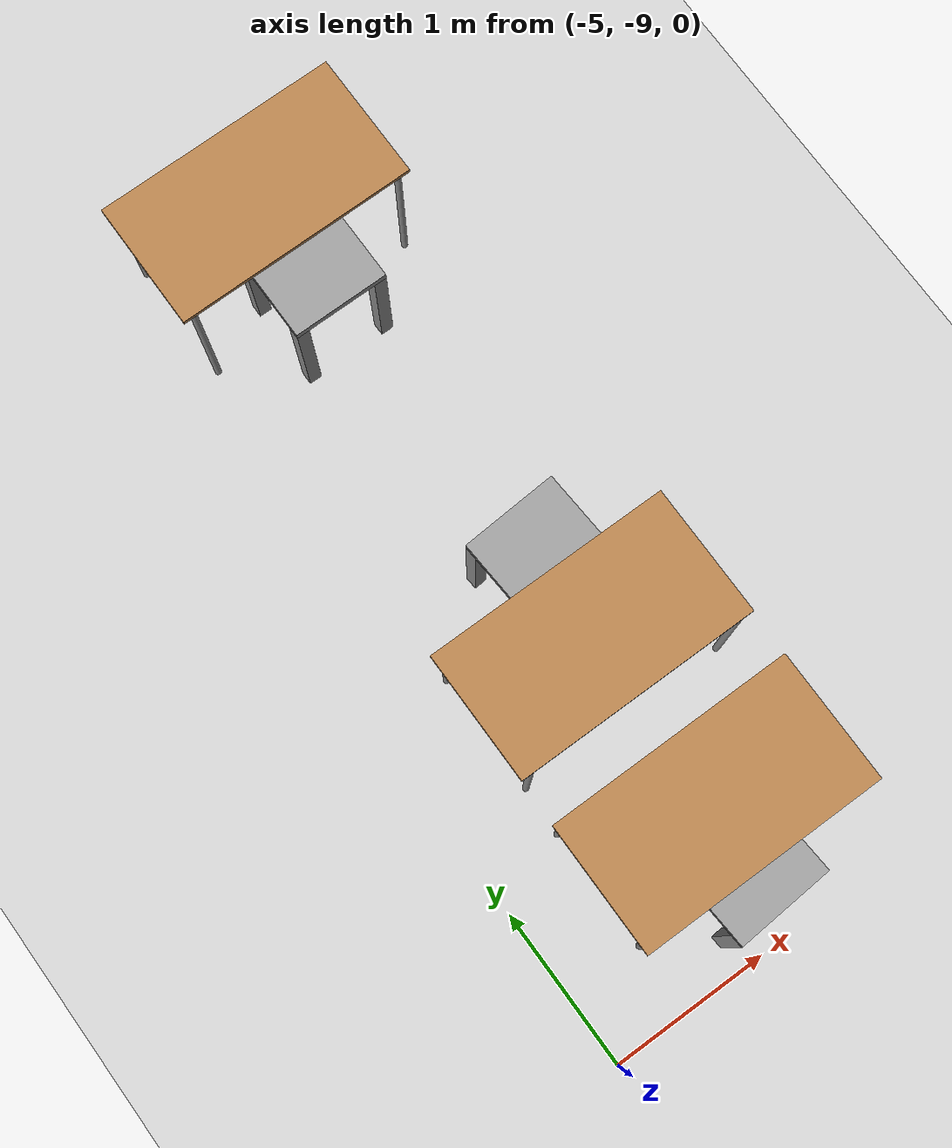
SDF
<sdf version="1.7">
 <world name="default">
  <model name="ground_plane">
   <static>1</static>
   <link name="link">
    <collision name="collision">
     <geometry><plane><normal>0 0 1</normal><size>100 100</size></plane></geometry>
     <surface>
      <contact><collide_bitmask>65535</collide_bitmask></contact>
      <friction><ode><mu>100</mu><mu2>50</mu2></ode></friction>
     </surface>
    </collision>
    <visual name="visual">
     <cast_shadows>0</cast_shadows>
     <geometry><plane><normal>0 0 1</normal><size>100 100</size></plane></geometry>
     <material>
      <script><uri>file://media/materials/scripts/gazebo.material</uri><name>Gazebo/Grey</name></script>
     </material>
    </visual>
   </link>
  </model>
  <model name="table">
   <static>1</static>
   <link name="link">
    <collision name="surface">
     <pose>0 0 1 0 -0 0</pose>
     <geometry><box><size>1.5 0.8 0.03</size></box></geometry>
     <surface><friction><ode><mu>0.6</mu><mu2>0.6</mu2></ode></friction></surface>
    </collision>
    <visual name="visual1">
     <pose>0 0 1 0 -0 0</pose>
     <geometry><box><size>1.5 0.8 0.03</size></box></geometry>
     <material>
      <script><uri>file://media/materials/scripts/gazebo.material</uri><name>Gazebo/Wood</name></script>
     </material>
    </visual>
    <collision name="front_left_leg">
     <pose>0.68 0.38 0.5 0 -0 0</pose>
     <geometry><cylinder><radius>0.02</radius><length>1</length></cylinder></geometry>
    </collision>
    <visual name="front_left_leg">
     <pose>0.68 0.38 0.5 0 -0 0</pose>
     <geometry><cylinder><radius>0.02</radius><length>1</length></cylinder></geometry>
     <material>
      <script><uri>file://media/materials/scripts/gazebo.material</uri><name>Gazebo/Grey</name></script>
     </material>
    </visual>
    <collision name="front_right_leg">
     <pose>0.68 -0.38 0.5 0 -0 0</pose>
     <geometry><cylinder><radius>0.02</radius><length>1</length></cylinder></geometry>
    </collision>
    <visual name="front_right_leg">
     <pose>0.68 -0.38 0.5 0 -0 0</pose>
     <geometry><cylinder><radius>0.02</radius><length>1</length></cylinder></geometry>
     <material>
      <script><uri>file://media/materials/scripts/gazebo.material</uri><name>Gazebo/Grey</name></script>
     </material>
    </visual>
    <collision name="back_right_leg">
     <pose>-0.68 -0.38 0.5 0 -0 0</pose>
     <geometry><cylinder><radius>0.02</radius><length>1</length></cylinder></geometry>
    </collision>
    <visual name="back_right_leg">
     <pose>-0.68 -0.38 0.5 0 -0 0</pose>
     <geometry><cylinder><radius>0.02</radius><length>1</length></cylinder></geometry>
     <material>
      <script><uri>file://media/materials/scripts/gazebo.material</uri><name>Gazebo/Grey</name></script>
     </material>
    </visual>
    <collision name="back_left_leg">
     <pose>-0.68 0.38 0.5 0 -0 0</pose>
     <geometry><cylinder><radius>0.02</radius><length>1</length></cylinder></geometry>
    </collision>
    <visual name="back_left_leg">
     <pose>-0.68 0.38 0.5 0 -0 0</pose>
     <geometry><cylinder><radius>0.02</radius><length>1</length></cylinder></geometry>
     <material>
      <script><uri>file://media/materials/scripts/gazebo.material</uri><name>Gazebo/Grey</name></script>
     </material>
    </visual>
   </link>
   <pose>-3.83942 -4.04953 0 0 -0 0</pose>
  </model>
  <model name="table_0">
   <static>1</static>
   <link name="link">
    <collision name="surface">
     <pose>0 0 1 0 -0 0</pose>
     <geometry><box><size>1.5 0.8 0.03</size></box></geometry>
     <surface><friction><ode><mu>0.6</mu><mu2>0.6</mu2></ode></friction></surface>
    </collision>
    <visual name="visual1">
     <pose>0 0 1 0 -0 0</pose>
     <geometry><box><size>1.5 0.8 0.03</size></box></geometry>
     <material>
      <script><uri>file://media/materials/scripts/gazebo.material</uri><name>Gazebo/Wood</name></script>
     </material>
    </visual>
    <collision name="front_left_leg">
     <pose>0.68 0.38 0.5 0 -0 0</pose>
     <geometry><cylinder><radius>0.02</radius><length>1</length></cylinder></geometry>
    </collision>
    <visual name="front_left_leg">
     <pose>0.68 0.38 0.5 0 -0 0</pose>
     <geometry><cylinder><radius>0.02</radius><length>1</length></cylinder></geometry>
     <material>
      <script><uri>file://media/materials/scripts/gazebo.material</uri><name>Gazebo/Grey</name></script>
     </material>
    </visual>
    <collision name="front_right_leg">
     <pose>0.68 -0.38 0.5 0 -0 0</pose>
     <geometry><cylinder><radius>0.02</radius><length>1</length></cylinder></geometry>
    </collision>
    <visual name="front_right_leg">
     <pose>0.68 -0.38 0.5 0 -0 0</pose>
     <geometry><cylinder><radius>0.02</radius><length>1</length></cylinder></geometry>
     <material>
      <script><uri>file://media/materials/scripts/gazebo.material</uri><name>Gazebo/Grey</name></script>
     </material>
    </visual>
    <collision name="back_right_leg">
     <pose>-0.68 -0.38 0.5 0 -0 0</pose>
     <geometry><cylinder><radius>0.02</radius><length>1</length></cylinder></geometry>
    </collision>
    <visual name="back_right_leg">
     <pose>-0.68 -0.38 0.5 0 -0 0</pose>
     <geometry><cylinder><radius>0.02</radius><length>1</length></cylinder></geometry>
     <material>
      <script><uri>file://media/materials/scripts/gazebo.material</uri><name>Gazebo/Grey</name></script>
     </material>
    </visual>
    <collision name="back_left_leg">
     <pose>-0.68 0.38 0.5 0 -0 0</pose>
     <geometry><cylinder><radius>0.02</radius><length>1</length></cylinder></geometry>
    </collision>
    <visual name="back_left_leg">
     <pose>-0.68 0.38 0.5 0 -0 0</pose>
     <geometry><cylinder><radius>0.02</radius><length>1</length></cylinder></geometry>
     <material>
      <script><uri>file://media/materials/scripts/gazebo.material</uri><name>Gazebo/Grey</name></script>
     </material>
    </visual>
   </link>
   <pose>-3.83019 -7.10717 0 0 -0 0</pose>
  </model>
  <model name="table_1">
   <static>1</static>
   <link name="link">
    <collision name="surface">
     <pose>0 0 1 0 -0 0</pose>
     <geometry><box><size>1.5 0.8 0.03</size></box></geometry>
     <surface><friction><ode><mu>0.6</mu><mu2>0.6</mu2></ode></friction></surface>
    </collision>
    <visual name="visual1">
     <pose>0 0 1 0 -0 0</pose>
     <geometry><box><size>1.5 0.8 0.03</size></box></geometry>
     <material>
      <script><uri>file://media/materials/scripts/gazebo.material</uri><name>Gazebo/Wood</name></script>
     </material>
    </visual>
    <collision name="front_left_leg">
     <pose>0.68 0.38 0.5 0 -0 0</pose>
     <geometry><cylinder><radius>0.02</radius><length>1</length></cylinder></geometry>
    </collision>
    <visual name="front_left_leg">
     <pose>0.68 0.38 0.5 0 -0 0</pose>
     <geometry><cylinder><radius>0.02</radius><length>1</length></cylinder></geometry>
     <material>
      <script><uri>file://media/materials/scripts/gazebo.material</uri><name>Gazebo/Grey</name></script>
     </material>
    </visual>
    <collision name="front_right_leg">
     <pose>0.68 -0.38 0.5 0 -0 0</pose>
     <geometry><cylinder><radius>0.02</radius><length>1</length></cylinder></geometry>
    </collision>
    <visual name="front_right_leg">
     <pose>0.68 -0.38 0.5 0 -0 0</pose>
     <geometry><cylinder><radius>0.02</radius><length>1</length></cylinder></geometry>
     <material>
      <script><uri>file://media/materials/scripts/gazebo.material</uri><name>Gazebo/Grey</name></script>
     </material>
    </visual>
    <collision name="back_right_leg">
     <pose>-0.68 -0.38 0.5 0 -0 0</pose>
     <geometry><cylinder><radius>0.02</radius><length>1</length></cylinder></geometry>
    </collision>
    <visual name="back_right_leg">
     <pose>-0.68 -0.38 0.5 0 -0 0</pose>
     <geometry><cylinder><radius>0.02</radius><length>1</length></cylinder></geometry>
     <material>
      <script><uri>file://media/materials/scripts/gazebo.material</uri><name>Gazebo/Grey</name></script>
     </material>
    </visual>
    <collision name="back_left_leg">
     <pose>-0.68 0.38 0.5 0 -0 0</pose>
     <geometry><cylinder><radius>0.02</radius><length>1</length></cylinder></geometry>
    </collision>
    <visual name="back_left_leg">
     <pose>-0.68 0.38 0.5 0 -0 0</pose>
     <geometry><cylinder><radius>0.02</radius><length>1</length></cylinder></geometry>
     <material>
      <script><uri>file://media/materials/scripts/gazebo.material</uri><name>Gazebo/Grey</name></script>
     </material>
    </visual>
   </link>
   <pose>-3.83908 -8.17845 0 0 -0 0</pose>
  </model>
  <model name="seat">
   <link name="link_0">
    <pose>0 0 0.34 0 -0 0</pose>
    <inertial>
     <mass>1</mass>
     <inertia>
      <ixx>0.166667</ixx>
      <ixy>0</ixy>
      <ixz>0</ixz>
      <iyy>0.166667</iyy>
      <iyz>0</iyz>
      <izz>0.166667</izz>
     </inertia>
    </inertial>
    <kinematic>1</kinematic>
    <visual name="visual">
     <geometry><box><size>0.6 0.6 0.05</size></box></geometry>
     <material>
      <lighting>1</lighting>
      <script><uri>file://media/materials/scripts/gazebo.material</uri><name>Gazebo/Grey</name></script>
      <shader type="pixel"><normal_map>__default__</normal_map></shader>
      <ambient>0.3 0.3 0.3 1</ambient>
      <diffuse>0.7 0.7 0.7 1</diffuse>
      <specular>0.01 0.01 0.01 1</specular>
      <emissive>0 0 0 1</emissive>
     </material>
    </visual>
    <collision name="collision">
     <geometry><box><size>0.6 0.6 0.05</size></box></geometry>
     <surface>
      <friction>
       <ode><mu>1</mu><mu2>1</mu2><fdir1>0 0 0</fdir1><slip1>0</slip1><slip2>0</slip2></ode>
       <torsional>
        <coefficient>1</coefficient>
        <patch_radius>0</patch_radius>
        <surface_radius>0</surface_radius>
        <use_patch_radius>1</use_patch_radius>
        <ode><slip>0</slip></ode>
       </torsional>
      </friction>
      <bounce><restitution_coefficient>0</restitution_coefficient><threshold>1e+06</threshold></bounce>
      <contact>
       <collide_without_contact>0</collide_without_contact>
       <collide_without_contact_bitmask>1</collide_without_contact_bitmask>
       <collide_bitmask>1</collide_bitmask>
       <ode>
        <soft_cfm>0</soft_cfm>
        <soft_erp>0.2</soft_erp>
        <kp>1e+13</kp>
        <kd>1</kd>
        <max_vel>0.01</max_vel>
        <min_depth>0</min_depth>
       </ode>
       <bullet>
        <split_impulse>1</split_impulse>
        <split_impulse_penetration_threshold>-0.01</split_impulse_penetration_threshold>
        <soft_cfm>0</soft_cfm>
        <soft_erp>0.2</soft_erp>
        <kp>1e+13</kp>
        <kd>1</kd>
       </bullet>
      </contact>
     </surface>
    </collision>
   </link>
   <link name="link_1">
    <pose>-0.26 -0.26 -0.085 0 -0 0</pose>
    <inertial>
     <mass>1</mass>
     <inertia>
      <ixx>0.166667</ixx>
      <ixy>0</ixy>
      <ixz>0</ixz>
      <iyy>0.166667</iyy>
      <iyz>0</iyz>
      <izz>0.166667</izz>
     </inertia>
    </inertial>
    <visual name="visual">
     <geometry><box><size>0.08 0.08 0.8</size></box></geometry>
     <material>
      <lighting>1</lighting>
      <script><uri>file://media/materials/scripts/gazebo.material</uri><name>Gazebo/Grey</name></script>
      <shader type="pixel"><normal_map>__default__</normal_map></shader>
      <ambient>0.3 0.3 0.3 1</ambient>
      <diffuse>0.7 0.7 0.7 1</diffuse>
      <specular>0.01 0.01 0.01 1</specular>
      <emissive>0 0 0 1</emissive>
     </material>
    </visual>
    <collision name="collision">
     <geometry><box><size>0.08 0.08 0.8</size></box></geometry>
     <surface>
      <friction>
       <ode><mu>1</mu><mu2>1</mu2><fdir1>0 0 0</fdir1><slip1>0</slip1><slip2>0</slip2></ode>
       <torsional>
        <coefficient>1</coefficient>
        <patch_radius>0</patch_radius>
        <surface_radius>0</surface_radius>
        <use_patch_radius>1</use_patch_radius>
        <ode><slip>0</slip></ode>
       </torsional>
      </friction>
      <bounce><restitution_coefficient>0</restitution_coefficient><threshold>1e+06</threshold></bounce>
      <contact>
       <collide_without_contact>0</collide_without_contact>
       <collide_without_contact_bitmask>1</collide_without_contact_bitmask>
       <collide_bitmask>1</collide_bitmask>
       <ode>
        <soft_cfm>0</soft_cfm>
        <soft_erp>0.2</soft_erp>
        <kp>1e+13</kp>
        <kd>1</kd>
        <max_vel>0.01</max_vel>
        <min_depth>0</min_depth>
       </ode>
       <bullet>
        <split_impulse>1</split_impulse>
        <split_impulse_penetration_threshold>-0.01</split_impulse_penetration_threshold>
        <soft_cfm>0</soft_cfm>
        <soft_erp>0.2</soft_erp>
        <kp>1e+13</kp>
        <kd>1</kd>
       </bullet>
      </contact>
     </surface>
    </collision>
   </link>
   <link name="link_1_clone">
    <pose>-0.26 0.26 -0.085 0 -0 0</pose>
    <inertial>
     <mass>1</mass>
     <inertia>
      <ixx>0.166667</ixx>
      <ixy>0</ixy>
      <ixz>0</ixz>
      <iyy>0.166667</iyy>
      <iyz>0</iyz>
      <izz>0.166667</izz>
     </inertia>
    </inertial>
    <visual name="visual">
     <geometry><box><size>0.08 0.08 0.8</size></box></geometry>
     <material>
      <lighting>1</lighting>
      <script><uri>file://media/materials/scripts/gazebo.material</uri><name>Gazebo/Grey</name></script>
      <shader type="pixel"><normal_map>__default__</normal_map></shader>
      <ambient>0.3 0.3 0.3 1</ambient>
      <diffuse>0.7 0.7 0.7 1</diffuse>
      <specular>0.01 0.01 0.01 1</specular>
      <emissive>0 0 0 1</emissive>
     </material>
    </visual>
    <collision name="collision">
     <geometry><box><size>0.08 0.08 0.8</size></box></geometry>
     <surface>
      <friction>
       <ode><mu>1</mu><mu2>1</mu2><fdir1>0 0 0</fdir1><slip1>0</slip1><slip2>0</slip2></ode>
       <torsional>
        <coefficient>1</coefficient>
        <patch_radius>0</patch_radius>
        <surface_radius>0</surface_radius>
        <use_patch_radius>1</use_patch_radius>
        <ode><slip>0</slip></ode>
       </torsional>
      </friction>
      <bounce><restitution_coefficient>0</restitution_coefficient><threshold>1e+06</threshold></bounce>
      <contact>
       <collide_without_contact>0</collide_without_contact>
       <collide_without_contact_bitmask>1</collide_without_contact_bitmask>
       <collide_bitmask>1</collide_bitmask>
       <ode>
        <soft_cfm>0</soft_cfm>
        <soft_erp>0.2</soft_erp>
        <kp>1e+13</kp>
        <kd>1</kd>
        <max_vel>0.01</max_vel>
        <min_depth>0</min_depth>
       </ode>
       <bullet>
        <split_impulse>1</split_impulse>
        <split_impulse_penetration_threshold>-0.01</split_impulse_penetration_threshold>
        <soft_cfm>0</soft_cfm>
        <soft_erp>0.2</soft_erp>
        <kp>1e+13</kp>
        <kd>1</kd>
       </bullet>
      </contact>
     </surface>
    </collision>
   </link>
   <link name="link_1_clone_0">
    <pose>0.26 -0.26 -0.085 0 -0 0</pose>
    <inertial>
     <mass>1</mass>
     <inertia>
      <ixx>0.166667</ixx>
      <ixy>0</ixy>
      <ixz>0</ixz>
      <iyy>0.166667</iyy>
      <iyz>0</iyz>
      <izz>0.166667</izz>
     </inertia>
    </inertial>
    <visual name="visual">
     <geometry><box><size>0.08 0.08 0.8</size></box></geometry>
     <material>
      <lighting>1</lighting>
      <script><uri>file://media/materials/scripts/gazebo.material</uri><name>Gazebo/Grey</name></script>
      <shader type="pixel"><normal_map>__default__</normal_map></shader>
      <ambient>0.3 0.3 0.3 1</ambient>
      <diffuse>0.7 0.7 0.7 1</diffuse>
      <specular>0.01 0.01 0.01 1</specular>
      <emissive>0 0 0 1</emissive>
     </material>
    </visual>
    <collision name="collision">
     <geometry><box><size>0.08 0.08 0.8</size></box></geometry>
     <surface>
      <friction>
       <ode><mu>1</mu><mu2>1</mu2><fdir1>0 0 0</fdir1><slip1>0</slip1><slip2>0</slip2></ode>
       <torsional>
        <coefficient>1</coefficient>
        <patch_radius>0</patch_radius>
        <surface_radius>0</surface_radius>
        <use_patch_radius>1</use_patch_radius>
        <ode><slip>0</slip></ode>
       </torsional>
      </friction>
      <bounce><restitution_coefficient>0</restitution_coefficient><threshold>1e+06</threshold></bounce>
      <contact>
       <collide_without_contact>0</collide_without_contact>
       <collide_without_contact_bitmask>1</collide_without_contact_bitmask>
       <collide_bitmask>1</collide_bitmask>
       <ode>
        <soft_cfm>0</soft_cfm>
        <soft_erp>0.2</soft_erp>
        <kp>1e+13</kp>
        <kd>1</kd>
        <max_vel>0.01</max_vel>
        <min_depth>0</min_depth>
       </ode>
       <bullet>
        <split_impulse>1</split_impulse>
        <split_impulse_penetration_threshold>-0.01</split_impulse_penetration_threshold>
        <soft_cfm>0</soft_cfm>
        <soft_erp>0.2</soft_erp>
        <kp>1e+13</kp>
        <kd>1</kd>
       </bullet>
      </contact>
     </surface>
    </collision>
   </link>
   <link name="link_1_clone_1">
    <pose>0.26 0.26 -0.085 0 -0 0</pose>
    <inertial>
     <mass>1</mass>
     <inertia>
      <ixx>0.166667</ixx>
      <ixy>0</ixy>
      <ixz>0</ixz>
      <iyy>0.166667</iyy>
      <iyz>0</iyz>
      <izz>0.166667</izz>
     </inertia>
    </inertial>
    <visual name="visual">
     <geometry><box><size>0.08 0.08 0.8</size></box></geometry>
     <material>
      <lighting>1</lighting>
      <script><uri>file://media/materials/scripts/gazebo.material</uri><name>Gazebo/Grey</name></script>
      <shader type="pixel"><normal_map>__default__</normal_map></shader>
      <ambient>0.3 0.3 0.3 1</ambient>
      <diffuse>0.7 0.7 0.7 1</diffuse>
      <specular>0.01 0.01 0.01 1</specular>
      <emissive>0 0 0 1</emissive>
     </material>
    </visual>
    <collision name="collision">
     <geometry><box><size>0.08 0.08 0.8</size></box></geometry>
     <surface>
      <friction>
       <ode><mu>1</mu><mu2>1</mu2><fdir1>0 0 0</fdir1><slip1>0</slip1><slip2>0</slip2></ode>
       <torsional>
        <coefficient>1</coefficient>
        <patch_radius>0</patch_radius>
        <surface_radius>0</surface_radius>
        <use_patch_radius>1</use_patch_radius>
        <ode><slip>0</slip></ode>
       </torsional>
      </friction>
      <bounce><restitution_coefficient>0</restitution_coefficient><threshold>1e+06</threshold></bounce>
      <contact>
       <collide_without_contact>0</collide_without_contact>
       <collide_without_contact_bitmask>1</collide_without_contact_bitmask>
       <collide_bitmask>1</collide_bitmask>
       <ode>
        <soft_cfm>0</soft_cfm>
        <soft_erp>0.2</soft_erp>
        <kp>1e+13</kp>
        <kd>1</kd>
        <max_vel>0.01</max_vel>
        <min_depth>0</min_depth>
       </ode>
       <bullet>
        <split_impulse>1</split_impulse>
        <split_impulse_penetration_threshold>-0.01</split_impulse_penetration_threshold>
        <soft_cfm>0</soft_cfm>
        <soft_erp>0.2</soft_erp>
        <kp>1e+13</kp>
        <kd>1</kd>
       </bullet>
      </contact>
     </surface>
    </collision>
   </link>
   <joint name="link_0_JOINT_0" type="revolute">
    <parent>link_0</parent>
    <child>link_1</child>
    <axis>
     <xyz>1 0 0</xyz>
     <limit>
      <lower>-1.79769e+308</lower>
      <upper>1.79769e+308</upper>
      <effort>-1</effort>
      <velocity>-1</velocity>
     </limit>
     <dynamics>
      <spring_reference>0</spring_reference>
      <spring_stiffness>0</spring_stiffness>
      <damping>0</damping>
     </dynamics>
    </axis>
    <physics>
     <ode><limit><cfm>0</cfm><erp>0.2</erp></limit><suspension><cfm>0</cfm><erp>0.2</erp></suspension></ode>
    </physics>
   </joint>
   <joint name="link_0_JOINT_1" type="revolute">
    <parent>link_0</parent>
    <child>link_1_clone</child>
    <axis>
     <xyz>1 0 0</xyz>
     <limit>
      <lower>-1.79769e+308</lower>
      <upper>1.79769e+308</upper>
      <effort>-1</effort>
      <velocity>-1</velocity>
     </limit>
     <dynamics>
      <spring_reference>0</spring_reference>
      <spring_stiffness>0</spring_stiffness>
      <damping>0</damping>
     </dynamics>
    </axis>
    <physics>
     <ode><limit><cfm>0</cfm><erp>0.2</erp></limit><suspension><cfm>0</cfm><erp>0.2</erp></suspension></ode>
    </physics>
   </joint>
   <joint name="link_0_JOINT_2" type="revolute">
    <parent>link_0</parent>
    <child>link_1_clone_1</child>
    <axis>
     <xyz>1 0 0</xyz>
     <limit>
      <lower>-1.79769e+308</lower>
      <upper>1.79769e+308</upper>
      <effort>-1</effort>
      <velocity>-1</velocity>
     </limit>
     <dynamics>
      <spring_reference>0</spring_reference>
      <spring_stiffness>0</spring_stiffness>
      <damping>0</damping>
      <friction>0</friction>
     </dynamics>
    </axis>
    <physics>
     <ode><limit><cfm>0</cfm><erp>0.2</erp></limit><suspension><cfm>0</cfm><erp>0.2</erp></suspension></ode>
    </physics>
   </joint>
   <joint name="link_0_JOINT_3" type="revolute">
    <parent>link_0</parent>
    <child>link_1_clone_0</child>
    <axis>
     <xyz>1 0 0</xyz>
     <limit>
      <lower>-1.79769e+308</lower>
      <upper>1.79769e+308</upper>
      <effort>-1</effort>
      <velocity>-1</velocity>
     </limit>
     <dynamics>
      <spring_reference>0</spring_reference>
      <spring_stiffness>0</spring_stiffness>
      <damping>0</damping>
     </dynamics>
    </axis>
    <physics>
     <ode><limit><cfm>0</cfm><erp>0.2</erp></limit><suspension><cfm>0</cfm><erp>0.2</erp></suspension></ode>
    </physics>
   </joint>
   <static>0</static>
   <pose>-3.82214 -4.51837 0.5 0 -0 0</pose>
  </model>
  <model name="seat_clone">
   <link name="link_0">
    <pose>0 0 0.34 0 -0 0</pose>
    <inertial>
     <mass>1</mass>
     <inertia>
      <ixx>0.166667</ixx>
      <ixy>0</ixy>
      <ixz>0</ixz>
      <iyy>0.166667</iyy>
      <iyz>0</iyz>
      <izz>0.166667</izz>
     </inertia>
    </inertial>
    <visual name="visual">
     <geometry><box><size>0.6 0.6 0.05</size></box></geometry>
     <material>
      <lighting>1</lighting>
      <script><uri>file://media/materials/scripts/gazebo.material</uri><name>Gazebo/Grey</name></script>
      <shader type="pixel"><normal_map>__default__</normal_map></shader>
      <ambient>0.3 0.3 0.3 1</ambient>
      <diffuse>0.7 0.7 0.7 1</diffuse>
      <specular>0.01 0.01 0.01 1</specular>
      <emissive>0 0 0 1</emissive>
     </material>
    </visual>
    <collision name="collision">
     <geometry><box><size>0.6 0.6 0.05</size></box></geometry>
     <surface>
      <friction>
       <ode><mu>1</mu><mu2>1</mu2><fdir1>0 0 0</fdir1><slip1>0</slip1><slip2>0</slip2></ode>
       <torsional>
        <coefficient>1</coefficient>
        <patch_radius>0</patch_radius>
        <surface_radius>0</surface_radius>
        <use_patch_radius>1</use_patch_radius>
        <ode><slip>0</slip></ode>
       </torsional>
      </friction>
      <bounce><restitution_coefficient>0</restitution_coefficient><threshold>1e+06</threshold></bounce>
      <contact>
       <collide_without_contact>0</collide_without_contact>
       <collide_without_contact_bitmask>1</collide_without_contact_bitmask>
       <collide_bitmask>1</collide_bitmask>
       <ode>
        <soft_cfm>0</soft_cfm>
        <soft_erp>0.2</soft_erp>
        <kp>1e+13</kp>
        <kd>1</kd>
        <max_vel>0.01</max_vel>
        <min_depth>0</min_depth>
       </ode>
       <bullet>
        <split_impulse>1</split_impulse>
        <split_impulse_penetration_threshold>-0.01</split_impulse_penetration_threshold>
        <soft_cfm>0</soft_cfm>
        <soft_erp>0.2</soft_erp>
        <kp>1e+13</kp>
        <kd>1</kd>
       </bullet>
      </contact>
     </surface>
    </collision>
   </link>
   <link name="link_1">
    <pose>-0.26 -0.26 -0.085 0 -0 0</pose>
    <inertial>
     <mass>1</mass>
     <inertia>
      <ixx>0.166667</ixx>
      <ixy>0</ixy>
      <ixz>0</ixz>
      <iyy>0.166667</iyy>
      <iyz>0</iyz>
      <izz>0.166667</izz>
     </inertia>
    </inertial>
    <visual name="visual">
     <geometry><box><size>0.08 0.08 0.8</size></box></geometry>
     <material>
      <lighting>1</lighting>
      <script><uri>file://media/materials/scripts/gazebo.material</uri><name>Gazebo/Grey</name></script>
      <shader type="pixel"><normal_map>__default__</normal_map></shader>
      <ambient>0.3 0.3 0.3 1</ambient>
      <diffuse>0.7 0.7 0.7 1</diffuse>
      <specular>0.01 0.01 0.01 1</specular>
      <emissive>0 0 0 1</emissive>
     </material>
    </visual>
    <collision name="collision">
     <geometry><box><size>0.08 0.08 0.8</size></box></geometry>
     <surface>
      <friction>
       <ode><mu>1</mu><mu2>1</mu2><fdir1>0 0 0</fdir1><slip1>0</slip1><slip2>0</slip2></ode>
       <torsional>
        <coefficient>1</coefficient>
        <patch_radius>0</patch_radius>
        <surface_radius>0</surface_radius>
        <use_patch_radius>1</use_patch_radius>
        <ode><slip>0</slip></ode>
       </torsional>
      </friction>
      <bounce><restitution_coefficient>0</restitution_coefficient><threshold>1e+06</threshold></bounce>
      <contact>
       <collide_without_contact>0</collide_without_contact>
       <collide_without_contact_bitmask>1</collide_without_contact_bitmask>
       <collide_bitmask>1</collide_bitmask>
       <ode>
        <soft_cfm>0</soft_cfm>
        <soft_erp>0.2</soft_erp>
        <kp>1e+13</kp>
        <kd>1</kd>
        <max_vel>0.01</max_vel>
        <min_depth>0</min_depth>
       </ode>
       <bullet>
        <split_impulse>1</split_impulse>
        <split_impulse_penetration_threshold>-0.01</split_impulse_penetration_threshold>
        <soft_cfm>0</soft_cfm>
        <soft_erp>0.2</soft_erp>
        <kp>1e+13</kp>
        <kd>1</kd>
       </bullet>
      </contact>
     </surface>
    </collision>
   </link>
   <link name="link_1_clone">
    <pose>-0.26 0.26 -0.085 0 -0 0</pose>
    <inertial>
     <mass>1</mass>
     <inertia>
      <ixx>0.166667</ixx>
      <ixy>0</ixy>
      <ixz>0</ixz>
      <iyy>0.166667</iyy>
      <iyz>0</iyz>
      <izz>0.166667</izz>
     </inertia>
    </inertial>
    <visual name="visual">
     <geometry><box><size>0.08 0.08 0.8</size></box></geometry>
     <material>
      <lighting>1</lighting>
      <script><uri>file://media/materials/scripts/gazebo.material</uri><name>Gazebo/Grey</name></script>
      <shader type="pixel"><normal_map>__default__</normal_map></shader>
      <ambient>0.3 0.3 0.3 1</ambient>
      <diffuse>0.7 0.7 0.7 1</diffuse>
      <specular>0.01 0.01 0.01 1</specular>
      <emissive>0 0 0 1</emissive>
     </material>
    </visual>
    <collision name="collision">
     <geometry><box><size>0.08 0.08 0.8</size></box></geometry>
     <surface>
      <friction>
       <ode><mu>1</mu><mu2>1</mu2><fdir1>0 0 0</fdir1><slip1>0</slip1><slip2>0</slip2></ode>
       <torsional>
        <coefficient>1</coefficient>
        <patch_radius>0</patch_radius>
        <surface_radius>0</surface_radius>
        <use_patch_radius>1</use_patch_radius>
        <ode><slip>0</slip></ode>
       </torsional>
      </friction>
      <bounce><restitution_coefficient>0</restitution_coefficient><threshold>1e+06</threshold></bounce>
      <contact>
       <collide_without_contact>0</collide_without_contact>
       <collide_without_contact_bitmask>1</collide_without_contact_bitmask>
       <collide_bitmask>1</collide_bitmask>
       <ode>
        <soft_cfm>0</soft_cfm>
        <soft_erp>0.2</soft_erp>
        <kp>1e+13</kp>
        <kd>1</kd>
        <max_vel>0.01</max_vel>
        <min_depth>0</min_depth>
       </ode>
       <bullet>
        <split_impulse>1</split_impulse>
        <split_impulse_penetration_threshold>-0.01</split_impulse_penetration_threshold>
        <soft_cfm>0</soft_cfm>
        <soft_erp>0.2</soft_erp>
        <kp>1e+13</kp>
        <kd>1</kd>
       </bullet>
      </contact>
     </surface>
    </collision>
   </link>
   <link name="link_1_clone_0">
    <pose>0.26 -0.26 -0.085 0 -0 0</pose>
    <inertial>
     <mass>1</mass>
     <inertia>
      <ixx>0.166667</ixx>
      <ixy>0</ixy>
      <ixz>0</ixz>
      <iyy>0.166667</iyy>
      <iyz>0</iyz>
      <izz>0.166667</izz>
     </inertia>
    </inertial>
    <visual name="visual">
     <geometry><box><size>0.08 0.08 0.8</size></box></geometry>
     <material>
      <lighting>1</lighting>
      <script><uri>file://media/materials/scripts/gazebo.material</uri><name>Gazebo/Grey</name></script>
      <shader type="pixel"><normal_map>__default__</normal_map></shader>
      <ambient>0.3 0.3 0.3 1</ambient>
      <diffuse>0.7 0.7 0.7 1</diffuse>
      <specular>0.01 0.01 0.01 1</specular>
      <emissive>0 0 0 1</emissive>
     </material>
    </visual>
    <collision name="collision">
     <geometry><box><size>0.08 0.08 0.8</size></box></geometry>
     <surface>
      <friction>
       <ode><mu>1</mu><mu2>1</mu2><fdir1>0 0 0</fdir1><slip1>0</slip1><slip2>0</slip2></ode>
       <torsional>
        <coefficient>1</coefficient>
        <patch_radius>0</patch_radius>
        <surface_radius>0</surface_radius>
        <use_patch_radius>1</use_patch_radius>
        <ode><slip>0</slip></ode>
       </torsional>
      </friction>
      <bounce><restitution_coefficient>0</restitution_coefficient><threshold>1e+06</threshold></bounce>
      <contact>
       <collide_without_contact>0</collide_without_contact>
       <collide_without_contact_bitmask>1</collide_without_contact_bitmask>
       <collide_bitmask>1</collide_bitmask>
       <ode>
        <soft_cfm>0</soft_cfm>
        <soft_erp>0.2</soft_erp>
        <kp>1e+13</kp>
        <kd>1</kd>
        <max_vel>0.01</max_vel>
        <min_depth>0</min_depth>
       </ode>
       <bullet>
        <split_impulse>1</split_impulse>
        <split_impulse_penetration_threshold>-0.01</split_impulse_penetration_threshold>
        <soft_cfm>0</soft_cfm>
        <soft_erp>0.2</soft_erp>
        <kp>1e+13</kp>
        <kd>1</kd>
       </bullet>
      </contact>
     </surface>
    </collision>
   </link>
   <link name="link_1_clone_1">
    <pose>0.26 0.26 -0.085 0 -0 0</pose>
    <inertial>
     <mass>1</mass>
     <inertia>
      <ixx>0.166667</ixx>
      <ixy>0</ixy>
      <ixz>0</ixz>
      <iyy>0.166667</iyy>
      <iyz>0</iyz>
      <izz>0.166667</izz>
     </inertia>
    </inertial>
    <visual name="visual">
     <geometry><box><size>0.08 0.08 0.8</size></box></geometry>
     <material>
      <lighting>1</lighting>
      <script><uri>file://media/materials/scripts/gazebo.material</uri><name>Gazebo/Grey</name></script>
      <shader type="pixel"><normal_map>__default__</normal_map></shader>
      <ambient>0.3 0.3 0.3 1</ambient>
      <diffuse>0.7 0.7 0.7 1</diffuse>
      <specular>0.01 0.01 0.01 1</specular>
      <emissive>0 0 0 1</emissive>
     </material>
    </visual>
    <collision name="collision">
     <geometry><box><size>0.08 0.08 0.8</size></box></geometry>
     <surface>
      <friction>
       <ode><mu>1</mu><mu2>1</mu2><fdir1>0 0 0</fdir1><slip1>0</slip1><slip2>0</slip2></ode>
       <torsional>
        <coefficient>1</coefficient>
        <patch_radius>0</patch_radius>
        <surface_radius>0</surface_radius>
        <use_patch_radius>1</use_patch_radius>
        <ode><slip>0</slip></ode>
       </torsional>
      </friction>
      <bounce><restitution_coefficient>0</restitution_coefficient><threshold>1e+06</threshold></bounce>
      <contact>
       <collide_without_contact>0</collide_without_contact>
       <collide_without_contact_bitmask>1</collide_without_contact_bitmask>
       <collide_bitmask>1</collide_bitmask>
       <ode>
        <soft_cfm>0</soft_cfm>
        <soft_erp>0.2</soft_erp>
        <kp>1e+13</kp>
        <kd>1</kd>
        <max_vel>0.01</max_vel>
        <min_depth>0</min_depth>
       </ode>
       <bullet>
        <split_impulse>1</split_impulse>
        <split_impulse_penetration_threshold>-0.01</split_impulse_penetration_threshold>
        <soft_cfm>0</soft_cfm>
        <soft_erp>0.2</soft_erp>
        <kp>1e+13</kp>
        <kd>1</kd>
       </bullet>
      </contact>
     </surface>
    </collision>
   </link>
   <joint name="link_0_JOINT_0" type="revolute">
    <parent>link_0</parent>
    <child>link_1</child>
    <axis>
     <xyz>1 0 0</xyz>
     <limit>
      <lower>-1.79769e+308</lower>
      <upper>1.79769e+308</upper>
      <effort>-1</effort>
      <velocity>-1</velocity>
     </limit>
     <dynamics>
      <spring_reference>0</spring_reference>
      <spring_stiffness>0</spring_stiffness>
      <damping>0</damping>
     </dynamics>
    </axis>
    <physics>
     <ode><limit><cfm>0</cfm><erp>0.2</erp></limit><suspension><cfm>0</cfm><erp>0.2</erp></suspension></ode>
    </physics>
   </joint>
   <joint name="link_0_JOINT_1" type="revolute">
    <parent>link_0</parent>
    <child>link_1_clone</child>
    <axis>
     <xyz>1 0 0</xyz>
     <limit>
      <lower>-1.79769e+308</lower>
      <upper>1.79769e+308</upper>
      <effort>-1</effort>
      <velocity>-1</velocity>
     </limit>
     <dynamics>
      <spring_reference>0</spring_reference>
      <spring_stiffness>0</spring_stiffness>
      <damping>0</damping>
     </dynamics>
    </axis>
    <physics>
     <ode><limit><cfm>0</cfm><erp>0.2</erp></limit><suspension><cfm>0</cfm><erp>0.2</erp></suspension></ode>
    </physics>
   </joint>
   <joint name="link_0_JOINT_2" type="revolute">
    <parent>link_0</parent>
    <child>link_1_clone_1</child>
    <axis>
     <xyz>1 0 0</xyz>
     <limit>
      <lower>-1.79769e+308</lower>
      <upper>1.79769e+308</upper>
      <effort>-1</effort>
      <velocity>-1</velocity>
     </limit>
     <dynamics>
      <spring_reference>0</spring_reference>
      <spring_stiffness>0</spring_stiffness>
      <damping>0</damping>
      <friction>0</friction>
     </dynamics>
    </axis>
    <physics>
     <ode><limit><cfm>0</cfm><erp>0.2</erp></limit><suspension><cfm>0</cfm><erp>0.2</erp></suspension></ode>
    </physics>
   </joint>
   <joint name="link_0_JOINT_3" type="revolute">
    <parent>link_0</parent>
    <child>link_1_clone_0</child>
    <axis>
     <xyz>1 0 0</xyz>
     <limit>
      <lower>-1.79769e+308</lower>
      <upper>1.79769e+308</upper>
      <effort>-1</effort>
      <velocity>-1</velocity>
     </limit>
     <dynamics>
      <spring_reference>0</spring_reference>
      <spring_stiffness>0</spring_stiffness>
      <damping>0</damping>
     </dynamics>
    </axis>
    <physics>
     <ode><limit><cfm>0</cfm><erp>0.2</erp></limit><suspension><cfm>0</cfm><erp>0.2</erp></suspension></ode>
    </physics>
   </joint>
   <static>0</static>
   <pose>-3.74751 -6.59095 0.485254 -0.00099 -2e-06 0.064081</pose>
  </model>
  <model name="seat_clone_0">
   <link name="link_0">
    <pose>0 0 0.34 0 -0 0</pose>
    <inertial>
     <mass>1</mass>
     <inertia>
      <ixx>0.166667</ixx>
      <ixy>0</ixy>
      <ixz>0</ixz>
      <iyy>0.166667</iyy>
      <iyz>0</iyz>
      <izz>0.166667</izz>
     </inertia>
    </inertial>
    <visual name="visual">
     <geometry><box><size>0.6 0.6 0.05</size></box></geometry>
     <material>
      <lighting>1</lighting>
      <script><uri>file://media/materials/scripts/gazebo.material</uri><name>Gazebo/Grey</name></script>
      <shader type="pixel"><normal_map>__default__</normal_map></shader>
      <ambient>0.3 0.3 0.3 1</ambient>
      <diffuse>0.7 0.7 0.7 1</diffuse>
      <specular>0.01 0.01 0.01 1</specular>
      <emissive>0 0 0 1</emissive>
     </material>
    </visual>
    <collision name="collision">
     <geometry><box><size>0.6 0.6 0.05</size></box></geometry>
     <surface>
      <friction>
       <ode><mu>1</mu><mu2>1</mu2><fdir1>0 0 0</fdir1><slip1>0</slip1><slip2>0</slip2></ode>
       <torsional>
        <coefficient>1</coefficient>
        <patch_radius>0</patch_radius>
        <surface_radius>0</surface_radius>
        <use_patch_radius>1</use_patch_radius>
        <ode><slip>0</slip></ode>
       </torsional>
      </friction>
      <bounce><restitution_coefficient>0</restitution_coefficient><threshold>1e+06</threshold></bounce>
      <contact>
       <collide_without_contact>0</collide_without_contact>
       <collide_without_contact_bitmask>1</collide_without_contact_bitmask>
       <collide_bitmask>1</collide_bitmask>
       <ode>
        <soft_cfm>0</soft_cfm>
        <soft_erp>0.2</soft_erp>
        <kp>1e+13</kp>
        <kd>1</kd>
        <max_vel>0.01</max_vel>
        <min_depth>0</min_depth>
       </ode>
       <bullet>
        <split_impulse>1</split_impulse>
        <split_impulse_penetration_threshold>-0.01</split_impulse_penetration_threshold>
        <soft_cfm>0</soft_cfm>
        <soft_erp>0.2</soft_erp>
        <kp>1e+13</kp>
        <kd>1</kd>
       </bullet>
      </contact>
     </surface>
    </collision>
   </link>
   <link name="link_1">
    <pose>-0.26 -0.26 -0.085 0 -0 0</pose>
    <inertial>
     <mass>1</mass>
     <inertia>
      <ixx>0.166667</ixx>
      <ixy>0</ixy>
      <ixz>0</ixz>
      <iyy>0.166667</iyy>
      <iyz>0</iyz>
      <izz>0.166667</izz>
     </inertia>
    </inertial>
    <visual name="visual">
     <geometry><box><size>0.08 0.08 0.8</size></box></geometry>
     <material>
      <lighting>1</lighting>
      <script><uri>file://media/materials/scripts/gazebo.material</uri><name>Gazebo/Grey</name></script>
      <shader type="pixel"><normal_map>__default__</normal_map></shader>
      <ambient>0.3 0.3 0.3 1</ambient>
      <diffuse>0.7 0.7 0.7 1</diffuse>
      <specular>0.01 0.01 0.01 1</specular>
      <emissive>0 0 0 1</emissive>
     </material>
    </visual>
    <collision name="collision">
     <geometry><box><size>0.08 0.08 0.8</size></box></geometry>
     <surface>
      <friction>
       <ode><mu>1</mu><mu2>1</mu2><fdir1>0 0 0</fdir1><slip1>0</slip1><slip2>0</slip2></ode>
       <torsional>
        <coefficient>1</coefficient>
        <patch_radius>0</patch_radius>
        <surface_radius>0</surface_radius>
        <use_patch_radius>1</use_patch_radius>
        <ode><slip>0</slip></ode>
       </torsional>
      </friction>
      <bounce><restitution_coefficient>0</restitution_coefficient><threshold>1e+06</threshold></bounce>
      <contact>
       <collide_without_contact>0</collide_without_contact>
       <collide_without_contact_bitmask>1</collide_without_contact_bitmask>
       <collide_bitmask>1</collide_bitmask>
       <ode>
        <soft_cfm>0</soft_cfm>
        <soft_erp>0.2</soft_erp>
        <kp>1e+13</kp>
        <kd>1</kd>
        <max_vel>0.01</max_vel>
        <min_depth>0</min_depth>
       </ode>
       <bullet>
        <split_impulse>1</split_impulse>
        <split_impulse_penetration_threshold>-0.01</split_impulse_penetration_threshold>
        <soft_cfm>0</soft_cfm>
        <soft_erp>0.2</soft_erp>
        <kp>1e+13</kp>
        <kd>1</kd>
       </bullet>
      </contact>
     </surface>
    </collision>
   </link>
   <link name="link_1_clone">
    <pose>-0.26 0.26 -0.085 0 -0 0</pose>
    <inertial>
     <mass>1</mass>
     <inertia>
      <ixx>0.166667</ixx>
      <ixy>0</ixy>
      <ixz>0</ixz>
      <iyy>0.166667</iyy>
      <iyz>0</iyz>
      <izz>0.166667</izz>
     </inertia>
    </inertial>
    <visual name="visual">
     <geometry><box><size>0.08 0.08 0.8</size></box></geometry>
     <material>
      <lighting>1</lighting>
      <script><uri>file://media/materials/scripts/gazebo.material</uri><name>Gazebo/Grey</name></script>
      <shader type="pixel"><normal_map>__default__</normal_map></shader>
      <ambient>0.3 0.3 0.3 1</ambient>
      <diffuse>0.7 0.7 0.7 1</diffuse>
      <specular>0.01 0.01 0.01 1</specular>
      <emissive>0 0 0 1</emissive>
     </material>
    </visual>
    <collision name="collision">
     <geometry><box><size>0.08 0.08 0.8</size></box></geometry>
     <surface>
      <friction>
       <ode><mu>1</mu><mu2>1</mu2><fdir1>0 0 0</fdir1><slip1>0</slip1><slip2>0</slip2></ode>
       <torsional>
        <coefficient>1</coefficient>
        <patch_radius>0</patch_radius>
        <surface_radius>0</surface_radius>
        <use_patch_radius>1</use_patch_radius>
        <ode><slip>0</slip></ode>
       </torsional>
      </friction>
      <bounce><restitution_coefficient>0</restitution_coefficient><threshold>1e+06</threshold></bounce>
      <contact>
       <collide_without_contact>0</collide_without_contact>
       <collide_without_contact_bitmask>1</collide_without_contact_bitmask>
       <collide_bitmask>1</collide_bitmask>
       <ode>
        <soft_cfm>0</soft_cfm>
        <soft_erp>0.2</soft_erp>
        <kp>1e+13</kp>
        <kd>1</kd>
        <max_vel>0.01</max_vel>
        <min_depth>0</min_depth>
       </ode>
       <bullet>
        <split_impulse>1</split_impulse>
        <split_impulse_penetration_threshold>-0.01</split_impulse_penetration_threshold>
        <soft_cfm>0</soft_cfm>
        <soft_erp>0.2</soft_erp>
        <kp>1e+13</kp>
        <kd>1</kd>
       </bullet>
      </contact>
     </surface>
    </collision>
   </link>
   <link name="link_1_clone_0">
    <pose>0.26 -0.26 -0.085 0 -0 0</pose>
    <inertial>
     <mass>1</mass>
     <inertia>
      <ixx>0.166667</ixx>
      <ixy>0</ixy>
      <ixz>0</ixz>
      <iyy>0.166667</iyy>
      <iyz>0</iyz>
      <izz>0.166667</izz>
     </inertia>
    </inertial>
    <visual name="visual">
     <geometry><box><size>0.08 0.08 0.8</size></box></geometry>
     <material>
      <lighting>1</lighting>
      <script><uri>file://media/materials/scripts/gazebo.material</uri><name>Gazebo/Grey</name></script>
      <shader type="pixel"><normal_map>__default__</normal_map></shader>
      <ambient>0.3 0.3 0.3 1</ambient>
      <diffuse>0.7 0.7 0.7 1</diffuse>
      <specular>0.01 0.01 0.01 1</specular>
      <emissive>0 0 0 1</emissive>
     </material>
    </visual>
    <collision name="collision">
     <geometry><box><size>0.08 0.08 0.8</size></box></geometry>
     <surface>
      <friction>
       <ode><mu>1</mu><mu2>1</mu2><fdir1>0 0 0</fdir1><slip1>0</slip1><slip2>0</slip2></ode>
       <torsional>
        <coefficient>1</coefficient>
        <patch_radius>0</patch_radius>
        <surface_radius>0</surface_radius>
        <use_patch_radius>1</use_patch_radius>
        <ode><slip>0</slip></ode>
       </torsional>
      </friction>
      <bounce><restitution_coefficient>0</restitution_coefficient><threshold>1e+06</threshold></bounce>
      <contact>
       <collide_without_contact>0</collide_without_contact>
       <collide_without_contact_bitmask>1</collide_without_contact_bitmask>
       <collide_bitmask>1</collide_bitmask>
       <ode>
        <soft_cfm>0</soft_cfm>
        <soft_erp>0.2</soft_erp>
        <kp>1e+13</kp>
        <kd>1</kd>
        <max_vel>0.01</max_vel>
        <min_depth>0</min_depth>
       </ode>
       <bullet>
        <split_impulse>1</split_impulse>
        <split_impulse_penetration_threshold>-0.01</split_impulse_penetration_threshold>
        <soft_cfm>0</soft_cfm>
        <soft_erp>0.2</soft_erp>
        <kp>1e+13</kp>
        <kd>1</kd>
       </bullet>
      </contact>
     </surface>
    </collision>
   </link>
   <link name="link_1_clone_1">
    <pose>0.26 0.26 -0.085 0 -0 0</pose>
    <inertial>
     <mass>1</mass>
     <inertia>
      <ixx>0.166667</ixx>
      <ixy>0</ixy>
      <ixz>0</ixz>
      <iyy>0.166667</iyy>
      <iyz>0</iyz>
      <izz>0.166667</izz>
     </inertia>
    </inertial>
    <visual name="visual">
     <geometry><box><size>0.08 0.08 0.8</size></box></geometry>
     <material>
      <lighting>1</lighting>
      <script><uri>file://media/materials/scripts/gazebo.material</uri><name>Gazebo/Grey</name></script>
      <shader type="pixel"><normal_map>__default__</normal_map></shader>
      <ambient>0.3 0.3 0.3 1</ambient>
      <diffuse>0.7 0.7 0.7 1</diffuse>
      <specular>0.01 0.01 0.01 1</specular>
      <emissive>0 0 0 1</emissive>
     </material>
    </visual>
    <collision name="collision">
     <geometry><box><size>0.08 0.08 0.8</size></box></geometry>
     <surface>
      <friction>
       <ode><mu>1</mu><mu2>1</mu2><fdir1>0 0 0</fdir1><slip1>0</slip1><slip2>0</slip2></ode>
       <torsional>
        <coefficient>1</coefficient>
        <patch_radius>0</patch_radius>
        <surface_radius>0</surface_radius>
        <use_patch_radius>1</use_patch_radius>
        <ode><slip>0</slip></ode>
       </torsional>
      </friction>
      <bounce><restitution_coefficient>0</restitution_coefficient><threshold>1e+06</threshold></bounce>
      <contact>
       <collide_without_contact>0</collide_without_contact>
       <collide_without_contact_bitmask>1</collide_without_contact_bitmask>
       <collide_bitmask>1</collide_bitmask>
       <ode>
        <soft_cfm>0</soft_cfm>
        <soft_erp>0.2</soft_erp>
        <kp>1e+13</kp>
        <kd>1</kd>
        <max_vel>0.01</max_vel>
        <min_depth>0</min_depth>
       </ode>
       <bullet>
        <split_impulse>1</split_impulse>
        <split_impulse_penetration_threshold>-0.01</split_impulse_penetration_threshold>
        <soft_cfm>0</soft_cfm>
        <soft_erp>0.2</soft_erp>
        <kp>1e+13</kp>
        <kd>1</kd>
       </bullet>
      </contact>
     </surface>
    </collision>
   </link>
   <joint name="link_0_JOINT_0" type="revolute">
    <parent>link_0</parent>
    <child>link_1</child>
    <axis>
     <xyz>1 0 0</xyz>
     <limit>
      <lower>-1.79769e+308</lower>
      <upper>1.79769e+308</upper>
      <effort>-1</effort>
      <velocity>-1</velocity>
     </limit>
     <dynamics>
      <spring_reference>0</spring_reference>
      <spring_stiffness>0</spring_stiffness>
      <damping>0</damping>
     </dynamics>
    </axis>
    <physics>
     <ode><limit><cfm>0</cfm><erp>0.2</erp></limit><suspension><cfm>0</cfm><erp>0.2</erp></suspension></ode>
    </physics>
   </joint>
   <joint name="link_0_JOINT_1" type="revolute">
    <parent>link_0</parent>
    <child>link_1_clone</child>
    <axis>
     <xyz>1 0 0</xyz>
     <limit>
      <lower>-1.79769e+308</lower>
      <upper>1.79769e+308</upper>
      <effort>-1</effort>
      <velocity>-1</velocity>
     </limit>
     <dynamics>
      <spring_reference>0</spring_reference>
      <spring_stiffness>0</spring_stiffness>
      <damping>0</damping>
     </dynamics>
    </axis>
    <physics>
     <ode><limit><cfm>0</cfm><erp>0.2</erp></limit><suspension><cfm>0</cfm><erp>0.2</erp></suspension></ode>
    </physics>
   </joint>
   <joint name="link_0_JOINT_2" type="revolute">
    <parent>link_0</parent>
    <child>link_1_clone_1</child>
    <axis>
     <xyz>1 0 0</xyz>
     <limit>
      <lower>-1.79769e+308</lower>
      <upper>1.79769e+308</upper>
      <effort>-1</effort>
      <velocity>-1</velocity>
     </limit>
     <dynamics>
      <spring_reference>0</spring_reference>
      <spring_stiffness>0</spring_stiffness>
      <damping>0</damping>
      <friction>0</friction>
     </dynamics>
    </axis>
    <physics>
     <ode><limit><cfm>0</cfm><erp>0.2</erp></limit><suspension><cfm>0</cfm><erp>0.2</erp></suspension></ode>
    </physics>
   </joint>
   <joint name="link_0_JOINT_3" type="revolute">
    <parent>link_0</parent>
    <child>link_1_clone_0</child>
    <axis>
     <xyz>1 0 0</xyz>
     <limit>
      <lower>-1.79769e+308</lower>
      <upper>1.79769e+308</upper>
      <effort>-1</effort>
      <velocity>-1</velocity>
     </limit>
     <dynamics>
      <spring_reference>0</spring_reference>
      <spring_stiffness>0</spring_stiffness>
      <damping>0</damping>
     </dynamics>
    </axis>
    <physics>
     <ode><limit><cfm>0</cfm><erp>0.2</erp></limit><suspension><cfm>0</cfm><erp>0.2</erp></suspension></ode>
    </physics>
   </joint>
   <static>0</static>
   <pose>-3.88308 -8.51685 0.485169 -0.000378 2e-06 0.069037</pose>
  </model>
 </world>
</sdf>
